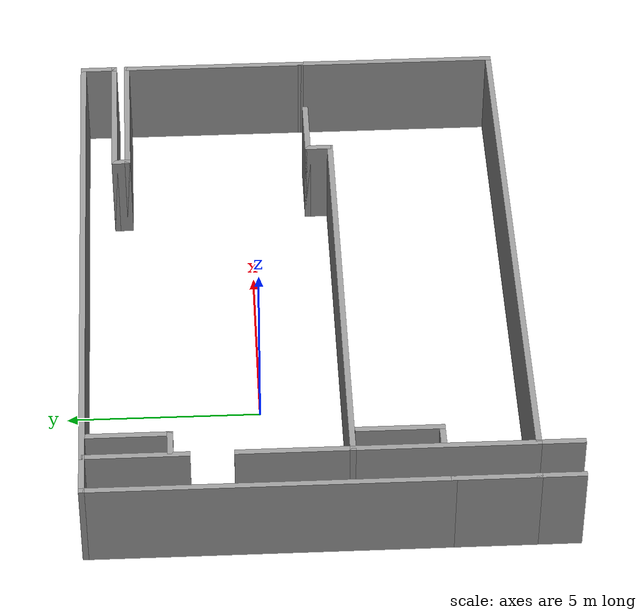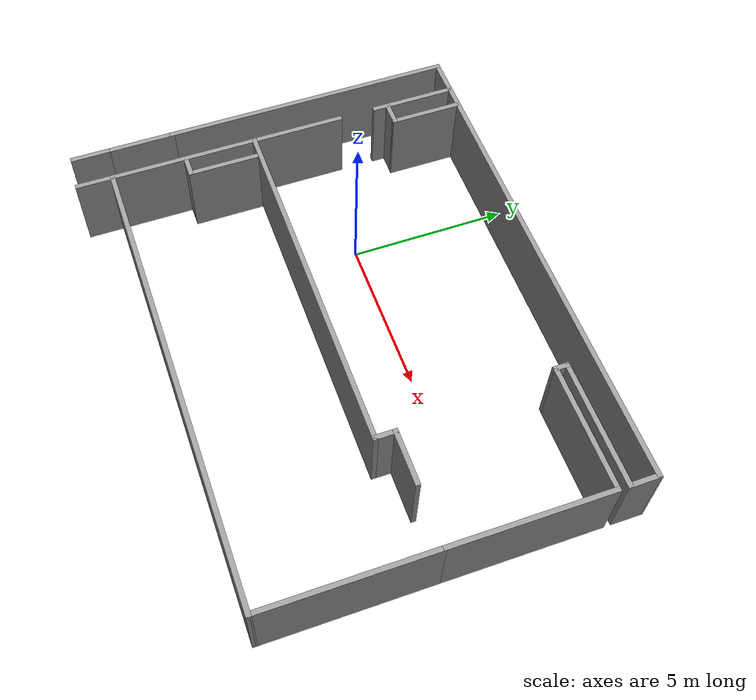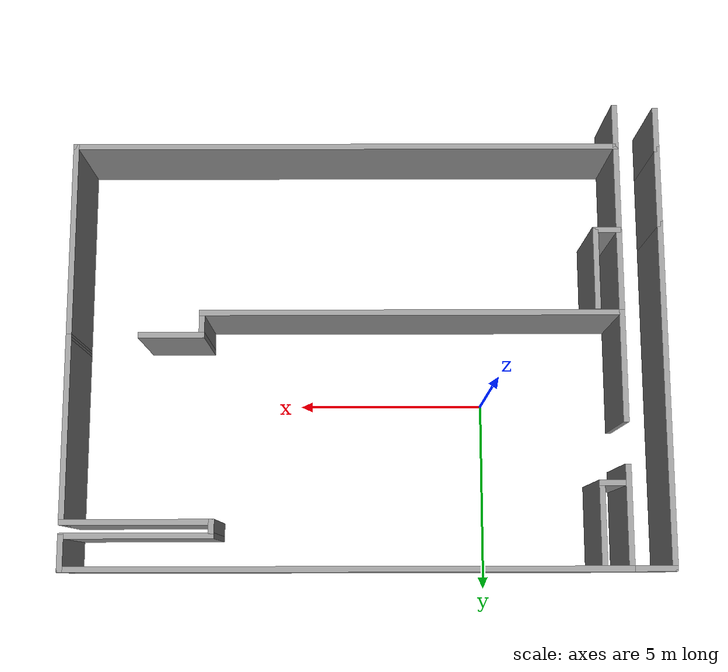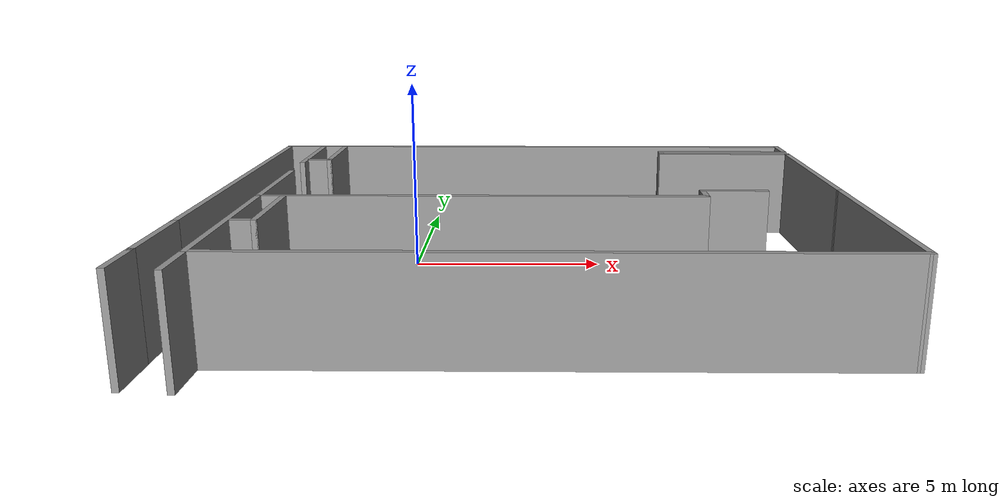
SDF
<?xml version='1.0'?>
<sdf version='1.7'>
  <model name='Clase'>
    <pose>3.17065 -1.68165 0 0 -0 0</pose>
    <link name='Wall_26'>
      <collision name='Wall_26_Collision'>
        <geometry>
          <box>
            <size>4 0.15 2.5</size>
          </box>
        </geometry>
        <pose>0 0 1.25 0 -0 0</pose>
      </collision>
      <visual name='Wall_26_Visual'>
        <pose>0 0 1.25 0 -0 0</pose>
        <geometry>
          <box>
            <size>4 0.15 2.5</size>
          </box>
        </geometry>
        <material>
          <script>
            <uri>file://media/materials/scripts/gazebo.material</uri>
            <name>Gazebo/Grey</name>
          </script>
          <ambient>1 1 1 1</ambient>
        </material>
        <meta>
          <layer>0</layer>
        </meta>
      </visual>
      <pose>5.92341 5.34431 0 0 -0 3.14159</pose>
    </link>
    <link name='Wall_27'>
      <collision name='Wall_27_Collision'>
        <geometry>
          <box>
            <size>0.5 0.15 2.5</size>
          </box>
        </geometry>
        <pose>0 0 1.25 0 -0 0</pose>
      </collision>
      <visual name='Wall_27_Visual'>
        <pose>0 0 1.25 0 -0 0</pose>
        <geometry>
          <box>
            <size>0.5 0.15 2.5</size>
          </box>
        </geometry>
        <material>
          <script>
            <uri>file://media/materials/scripts/gazebo.material</uri>
            <name>Gazebo/Grey</name>
          </script>
          <ambient>1 1 1 1</ambient>
        </material>
        <meta>
          <layer>0</layer>
        </meta>
      </visual>
      <pose>3.99841 5.16931 0 0 -0 -1.5708</pose>
    </link>
    <link name='Wall_28'>
      <collision name='Wall_28_Collision'>
        <geometry>
          <box>
            <size>4 0.15 2.5</size>
          </box>
        </geometry>
        <pose>0 0 1.25 0 -0 0</pose>
      </collision>
      <visual name='Wall_28_Visual'>
        <pose>0 0 1.25 0 -0 0</pose>
        <geometry>
          <box>
            <size>4 0.15 2.5</size>
          </box>
        </geometry>
        <material>
          <script>
            <uri>file://media/materials/scripts/gazebo.material</uri>
            <name>Gazebo/Grey</name>
          </script>
          <ambient>1 1 1 1</ambient>
        </material>
        <meta>
          <layer>0</layer>
        </meta>
      </visual>
      <pose>5.92341 4.99431 0 0 -0 0</pose>
    </link>
    <link name='Wall_29'>
      <collision name='Wall_29_Collision'>
        <geometry>
          <box>
            <size>5 0.15 2.5</size>
          </box>
        </geometry>
        <pose>0 0 1.25 0 -0 0</pose>
      </collision>
      <visual name='Wall_29_Visual'>
        <pose>0 0 1.25 0 -0 0</pose>
        <geometry>
          <box>
            <size>5 0.15 2.5</size>
          </box>
        </geometry>
        <material>
          <script>
            <uri>file://media/materials/scripts/gazebo.material</uri>
            <name>Gazebo/Grey</name>
          </script>
          <ambient>1 1 1 1</ambient>
        </material>
        <meta>
          <layer>0</layer>
        </meta>
      </visual>
      <pose>7.84841 2.56931 0 0 -0 -1.5708</pose>
    </link>
    <link name='Wall_31'>
      <collision name='Wall_31_Collision'>
        <geometry>
          <box>
            <size>1.75 0.15 2.5</size>
          </box>
        </geometry>
        <pose>0 0 1.25 0 -0 0</pose>
      </collision>
      <visual name='Wall_31_Visual'>
        <pose>0 0 1.25 0 -0 0</pose>
        <geometry>
          <box>
            <size>1.75 0.15 2.5</size>
          </box>
        </geometry>
        <material>
          <script>
            <uri>file://media/materials/scripts/gazebo.material</uri>
            <name>Gazebo/Grey</name>
          </script>
          <ambient>1 1 1 1</ambient>
        </material>
        <meta>
          <layer>0</layer>
        </meta>
      </visual>
      <pose>5.15155 0.105693 0 0 -0 3.14159</pose>
    </link>
    <link name='Wall_34'>
      <collision name='Wall_34_Collision'>
        <geometry>
          <box>
            <size>0.75 0.15 2.5</size>
          </box>
        </geometry>
        <pose>0 0 1.25 0 -0 0</pose>
      </collision>
      <visual name='Wall_34_Visual'>
        <pose>0 0 1.25 0 -0 0</pose>
        <geometry>
          <box>
            <size>0.75 0.15 2.5</size>
          </box>
        </geometry>
        <material>
          <script>
            <uri>file://media/materials/scripts/gazebo.material</uri>
            <name>Gazebo/Grey</name>
          </script>
          <ambient>1 1 1 1</ambient>
        </material>
        <meta>
          <layer>0</layer>
        </meta>
      </visual>
      <pose>4.35155 -0.194307 0 0 -0 -1.5708</pose>
    </link>
    <link name='Wall_35'>
      <collision name='Wall_35_Collision'>
        <geometry>
          <box>
            <size>11.25 0.15 2.5</size>
          </box>
        </geometry>
        <pose>0 0 1.25 0 -0 0</pose>
      </collision>
      <visual name='Wall_35_Visual'>
        <pose>0 0 1.25 0 -0 0</pose>
        <geometry>
          <box>
            <size>11.25 0.15 2.5</size>
          </box>
        </geometry>
        <material>
          <script>
            <uri>file://media/materials/scripts/gazebo.material</uri>
            <name>Gazebo/Grey</name>
          </script>
          <ambient>1 1 1 1</ambient>
        </material>
        <meta>
          <layer>0</layer>
        </meta>
      </visual>
      <pose>-1.19845 -0.494308 0 0 -0 3.14159</pose>
    </link>
    <link name='Wall_36'>
      <collision name='Wall_36_Collision'>
        <geometry>
          <box>
            <size>3 0.15 2.5</size>
          </box>
        </geometry>
        <pose>0 0 1.25 0 -0 0</pose>
      </collision>
      <visual name='Wall_36_Visual'>
        <pose>0 0 1.25 0 -0 0</pose>
        <geometry>
          <box>
            <size>3 0.15 2.5</size>
          </box>
        </geometry>
        <material>
          <script>
            <uri>file://media/materials/scripts/gazebo.material</uri>
            <name>Gazebo/Grey</name>
          </script>
          <ambient>1 1 1 1</ambient>
        </material>
        <meta>
          <layer>0</layer>
        </meta>
      </visual>
      <pose>-6.74845 0.930693 0 0 -0 1.5708</pose>
    </link>
    <link name='Wall_40'>
      <collision name='Wall_40_Collision'>
        <geometry>
          <box>
            <size>1 0.15 2.5</size>
          </box>
        </geometry>
        <pose>0 0 1.25 0 -0 0</pose>
      </collision>
      <visual name='Wall_40_Visual'>
        <pose>0 0 1.25 0 -0 0</pose>
        <geometry>
          <box>
            <size>1 0.15 2.5</size>
          </box>
        </geometry>
        <material>
          <script>
            <uri>file://media/materials/scripts/gazebo.material</uri>
            <name>Gazebo/Grey</name>
          </script>
          <ambient>1 1 1 1</ambient>
        </material>
        <meta>
          <layer>0</layer>
        </meta>
      </visual>
      <pose>7.84841 5.76931 0 0 -0 1.5708</pose>
    </link>
    <link name='Wall_41'>
      <collision name='Wall_41_Collision'>
        <geometry>
          <box>
            <size>14.75 0.15 2.5</size>
          </box>
        </geometry>
        <pose>0 0 1.25 0 -0 0</pose>
      </collision>
      <visual name='Wall_41_Visual'>
        <pose>0 0 1.25 0 -0 0</pose>
        <geometry>
          <box>
            <size>14.75 0.15 2.5</size>
          </box>
        </geometry>
        <material>
          <script>
            <uri>file://media/materials/scripts/gazebo.material</uri>
            <name>Gazebo/Grey</name>
          </script>
          <ambient>1 1 1 1</ambient>
        </material>
        <meta>
          <layer>0</layer>
        </meta>
      </visual>
      <pose>0.548408 6.19431 0 0 -0 3.14159</pose>
    </link>
    <link name='Wall_42'>
      <collision name='Wall_42_Collision'>
        <geometry>
          <box>
            <size>2.75 0.15 2.5</size>
          </box>
        </geometry>
        <pose>0 0 1.25 0 -0 0</pose>
      </collision>
      <visual name='Wall_42_Visual'>
        <pose>0 0 1.25 0 -0 0</pose>
        <geometry>
          <box>
            <size>2.75 0.15 2.5</size>
          </box>
        </geometry>
        <material>
          <script>
            <uri>file://media/materials/scripts/gazebo.material</uri>
            <name>Gazebo/Grey</name>
          </script>
          <ambient>1 1 1 1</ambient>
        </material>
        <meta>
          <layer>0</layer>
        </meta>
      </visual>
      <pose>-6.75159 4.89431 0 0 -0 -1.5708</pose>
    </link>
    <link name='Wall_44'>
      <collision name='Wall_44_Collision'>
        <geometry>
          <box>
            <size>1.25 0.15 2.5</size>
          </box>
        </geometry>
        <pose>0 0 1.25 0 -0 0</pose>
      </collision>
      <visual name='Wall_44_Visual'>
        <pose>0 0 1.25 0 -0 0</pose>
        <geometry>
          <box>
            <size>1.25 0.15 2.5</size>
          </box>
        </geometry>
        <material>
          <script>
            <uri>file://media/materials/scripts/gazebo.material</uri>
            <name>Gazebo/Grey</name>
          </script>
          <ambient>1 1 1 1</ambient>
        </material>
        <meta>
          <layer>0</layer>
        </meta>
      </visual>
      <pose>-7.30159 6.19431 0 0 -0 3.14159</pose>
    </link>
    <link name='Wall_45'>
      <collision name='Wall_45_Collision'>
        <geometry>
          <box>
            <size>9.25 0.15 2.5</size>
          </box>
        </geometry>
        <pose>0 0 1.25 0 -0 0</pose>
      </collision>
      <visual name='Wall_45_Visual'>
        <pose>0 0 1.25 0 -0 0</pose>
        <geometry>
          <box>
            <size>9.25 0.15 2.5</size>
          </box>
        </geometry>
        <material>
          <script>
            <uri>file://media/materials/scripts/gazebo.material</uri>
            <name>Gazebo/Grey</name>
          </script>
          <ambient>1 1 1 1</ambient>
        </material>
        <meta>
          <layer>0</layer>
        </meta>
      </visual>
      <pose>-7.85159 1.64431 0 0 -0 -1.5708</pose>
    </link>
    <link name='Wall_47'>
      <collision name='Wall_47_Collision'>
        <geometry>
          <box>
            <size>2.25 0.15 2.5</size>
          </box>
        </geometry>
        <pose>0 0 1.25 0 -0 0</pose>
      </collision>
      <visual name='Wall_47_Visual'>
        <pose>0 0 1.25 0 -0 0</pose>
        <geometry>
          <box>
            <size>2.25 0.15 2.5</size>
          </box>
        </geometry>
        <material>
          <script>
            <uri>file://media/materials/scripts/gazebo.material</uri>
            <name>Gazebo/Grey</name>
          </script>
          <ambient>1 1 1 1</ambient>
        </material>
        <meta>
          <layer>0</layer>
        </meta>
      </visual>
      <pose>-7.85159 -3.95569 0 0 -0 -1.5708</pose>
    </link>
    <link name='Wall_49'>
      <collision name='Wall_49_Collision'>
        <geometry>
          <box>
            <size>4.75 0.15 2.5</size>
          </box>
        </geometry>
        <pose>0 0 1.25 0 -0 0</pose>
      </collision>
      <visual name='Wall_49_Visual'>
        <pose>0 0 1.25 0 -0 0</pose>
        <geometry>
          <box>
            <size>4.75 0.15 2.5</size>
          </box>
        </geometry>
        <material>
          <script>
            <uri>file://media/materials/scripts/gazebo.material</uri>
            <name>Gazebo/Grey</name>
          </script>
          <ambient>1 1 1 1</ambient>
        </material>
        <meta>
          <layer>0</layer>
        </meta>
      </visual>
      <pose>-6.74845 -2.79431 0 0 -0 -1.5708</pose>
    </link>
    <link name='Wall_50'>
      <collision name='Wall_50_Collision'>
        <geometry>
          <box>
            <size>14.75 0.15 2.5</size>
          </box>
        </geometry>
        <pose>0 0 1.25 0 -0 0</pose>
      </collision>
      <visual name='Wall_50_Visual'>
        <pose>0 0 1.25 0 -0 0</pose>
        <geometry>
          <box>
            <size>14.75 0.15 2.5</size>
          </box>
        </geometry>
        <material>
          <script>
            <uri>file://media/materials/scripts/gazebo.material</uri>
            <name>Gazebo/Grey</name>
          </script>
          <ambient>1 1 1 1</ambient>
        </material>
        <meta>
          <layer>0</layer>
        </meta>
      </visual>
      <pose>0.551548 -5.09431 0 0 -0 0</pose>
    </link>
    <link name='Wall_51'>
      <collision name='Wall_51_Collision'>
        <geometry>
          <box>
            <size>5.38861 0.15 2.5</size>
          </box>
        </geometry>
        <pose>0 0 1.25 0 -0 0</pose>
      </collision>
      <visual name='Wall_51_Visual'>
        <pose>0 0 1.25 0 -0 0</pose>
        <geometry>
          <box>
            <size>5.38861 0.15 2.5</size>
          </box>
        </geometry>
        <material>
          <script>
            <uri>file://media/materials/scripts/gazebo.material</uri>
            <name>Gazebo/Grey</name>
          </script>
          <ambient>1 1 1 1</ambient>
        </material>
        <meta>
          <layer>0</layer>
        </meta>
      </visual>
      <pose>7.84998 -2.475 0 0 -0 1.5714</pose>
    </link>
    <link name='Wall_53'>
      <collision name='Wall_53_Collision'>
        <geometry>
          <box>
            <size>1.25 0.15 2.5</size>
          </box>
        </geometry>
        <pose>0 0 1.25 0 -0 0</pose>
      </collision>
      <visual name='Wall_53_Visual'>
        <pose>0 0 1.25 0 -0 0</pose>
        <geometry>
          <box>
            <size>1.25 0.15 2.5</size>
          </box>
        </geometry>
        <material>
          <script>
            <uri>file://media/materials/scripts/gazebo.material</uri>
            <name>Gazebo/Grey</name>
          </script>
          <ambient>1 1 1 1</ambient>
        </material>
        <meta>
          <layer>0</layer>
        </meta>
      </visual>
      <pose>-7.85159 -5.55569 0 0 -0 -1.5708</pose>
    </link>
    <link name='Wall_55'>
      <collision name='Wall_55_Collision'>
        <geometry>
          <box>
            <size>1.25 0.15 2.5</size>
          </box>
        </geometry>
        <pose>0 0 1.25 0 -0 0</pose>
      </collision>
      <visual name='Wall_55_Visual'>
        <pose>0 0 1.25 0 -0 0</pose>
        <geometry>
          <box>
            <size>1.25 0.15 2.5</size>
          </box>
        </geometry>
        <material>
          <script>
            <uri>file://media/materials/scripts/gazebo.material</uri>
            <name>Gazebo/Grey</name>
          </script>
          <ambient>1 1 1 1</ambient>
        </material>
        <meta>
          <layer>0</layer>
        </meta>
      </visual>
      <pose>-6.74845 -5.64431 0 0 -0 -1.5708</pose>
    </link>
    <link name='Wall_57'>
      <collision name='Wall_57_Collision'>
        <geometry>
          <box>
            <size>0.75 0.15 2.5</size>
          </box>
        </geometry>
        <pose>0 0 1.25 0 -0 0</pose>
      </collision>
      <visual name='Wall_57_Visual'>
        <pose>0 0 1.25 0 -0 0</pose>
        <geometry>
          <box>
            <size>0.75 0.15 2.5</size>
          </box>
        </geometry>
        <material>
          <script>
            <uri>file://media/materials/scripts/gazebo.material</uri>
            <name>Gazebo/Grey</name>
          </script>
          <ambient>1 1 1 1</ambient>
        </material>
        <meta>
          <layer>0</layer>
        </meta>
      </visual>
      <pose>-6.42 -2.75043 0 0 -0 0</pose>
    </link>
    <link name='Wall_58'>
      <collision name='Wall_58_Collision'>
        <geometry>
          <box>
            <size>2.25 0.15 2.5</size>
          </box>
        </geometry>
        <pose>0 0 1.25 0 -0 0</pose>
      </collision>
      <visual name='Wall_58_Visual'>
        <pose>0 0 1.25 0 -0 0</pose>
        <geometry>
          <box>
            <size>2.25 0.15 2.5</size>
          </box>
        </geometry>
        <material>
          <script>
            <uri>file://media/materials/scripts/gazebo.material</uri>
            <name>Gazebo/Grey</name>
          </script>
          <ambient>1 1 1 1</ambient>
        </material>
        <meta>
          <layer>0</layer>
        </meta>
      </visual>
      <pose>-6.12 -1.70043 0 0 -0 1.5708</pose>
    </link>
    <link name='Wall_91'>
      <collision name='Wall_91_Collision'>
        <geometry>
          <box>
            <size>0.75 0.15 2.5</size>
          </box>
        </geometry>
        <pose>0 0 1.25 0 -0 0</pose>
      </collision>
      <visual name='Wall_91_Visual'>
        <pose>0 0 1.25 0 -0 0</pose>
        <geometry>
          <box>
            <size>0.75 0.15 2.5</size>
          </box>
        </geometry>
        <material>
          <script>
            <uri>file://media/materials/scripts/gazebo.material</uri>
            <name>Gazebo/Grey</name>
          </script>
          <ambient>1 1 1 1</ambient>
        </material>
        <meta>
          <layer>0</layer>
        </meta>
      </visual>
      <pose>-6.35966 4.00772 0 0 -0 0</pose>
    </link>
    <link name='Wall_92'>
      <collision name='Wall_92_Collision'>
        <geometry>
          <box>
            <size>2.25 0.15 2.5</size>
          </box>
        </geometry>
        <pose>0 0 1.25 0 -0 0</pose>
      </collision>
      <visual name='Wall_92_Visual'>
        <pose>0 0 1.25 0 -0 0</pose>
        <geometry>
          <box>
            <size>2.25 0.15 2.5</size>
          </box>
        </geometry>
        <material>
          <script>
            <uri>file://media/materials/scripts/gazebo.material</uri>
            <name>Gazebo/Grey</name>
          </script>
          <ambient>1 1 1 1</ambient>
        </material>
        <meta>
          <layer>0</layer>
        </meta>
      </visual>
      <pose>-6.05966 5.05772 0 0 -0 1.5708</pose>
    </link>
    <static>1</static>
  </model>
</sdf>
